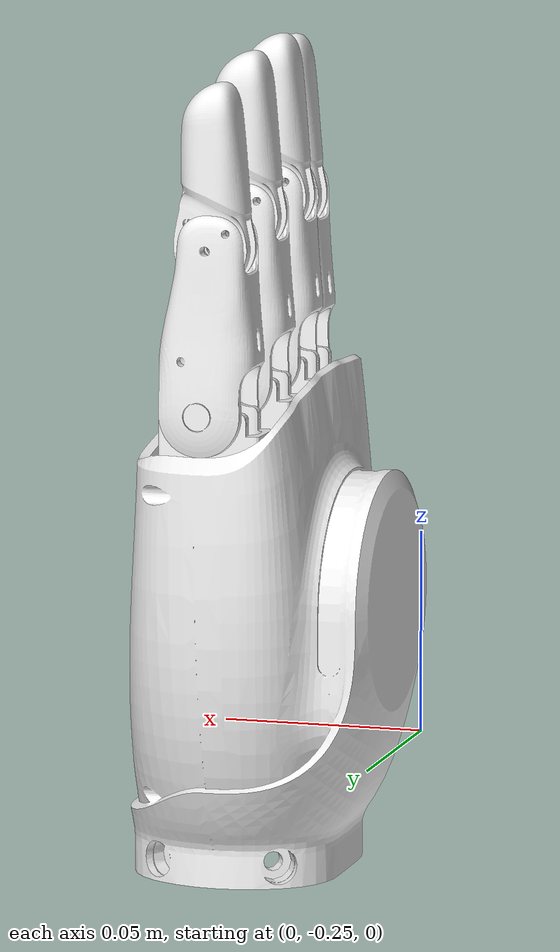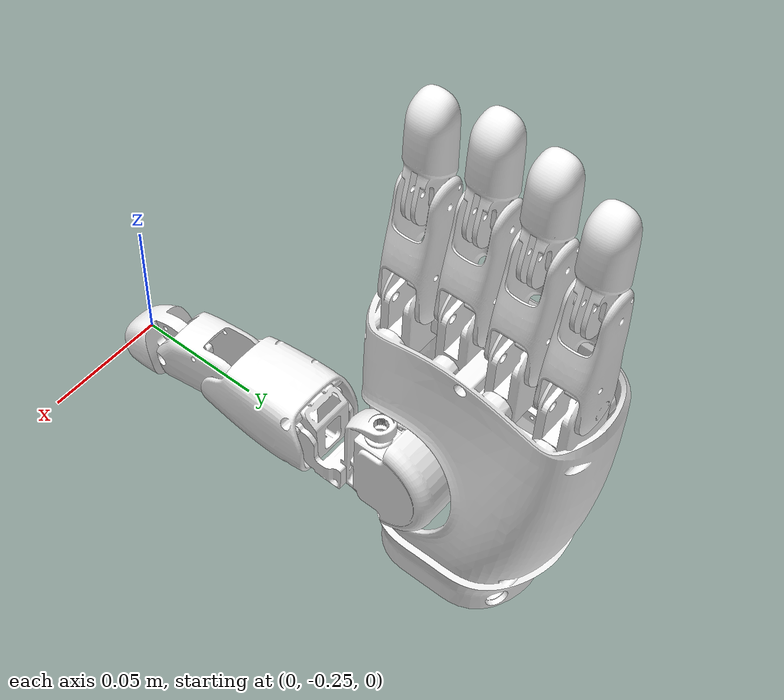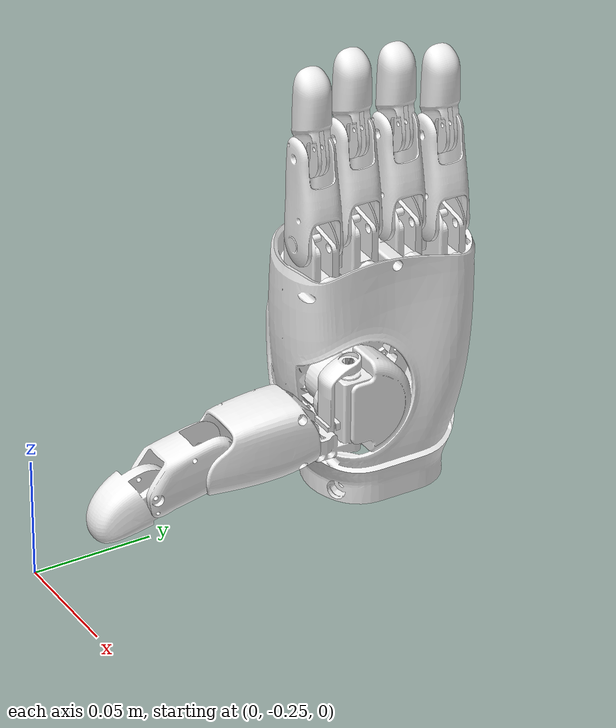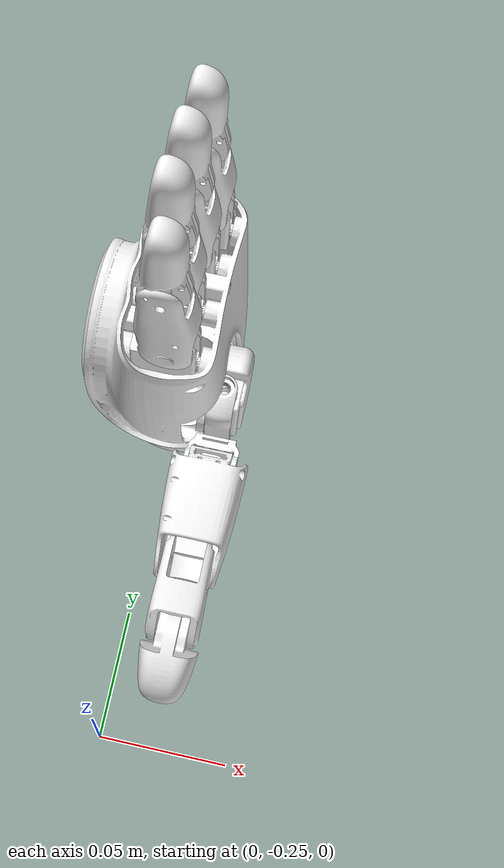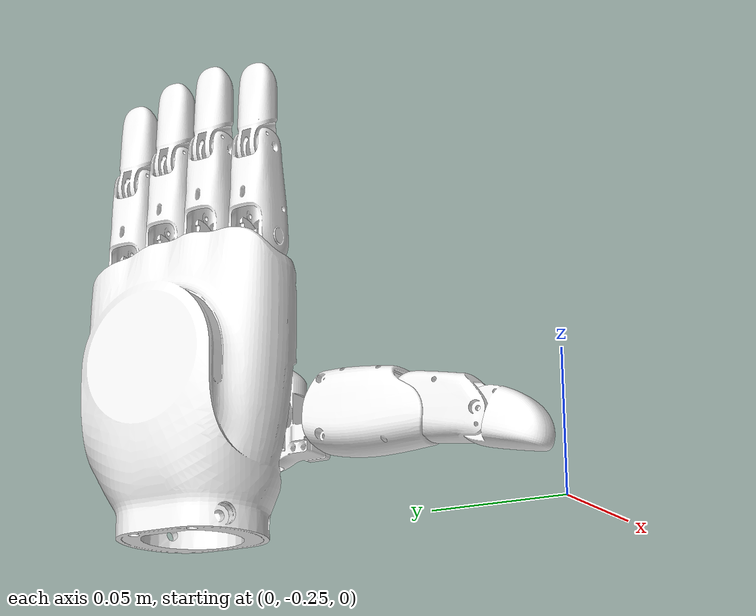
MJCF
<mujoco model="omnihand_left">
  <include file="omnihand_asset.xml" />
  <worldbody>
    <body name="L_palm" pos="0.0 -0.1 0.0">
      <geom class="plastic_visual" mesh="l_palm" />
      <geom class="plastic_collision" mesh="l_palm_col" />
      <geom pos="-0.0031978 -0.0079501 0.096423" class="plastic_visual" mesh="finger_abad" />
      <body name="L_thumb_roll_link" pos="0 -0.018529 0.046851">
        <inertial pos="0.016894 0.0027257 0.0022236" quat="0.416669 0.663999 0.384725 0.487318"
          mass="0.0441" diaginertia="1.95483e-05 1.81152e-05 6.47655e-06" />
        <joint name="L_thumb_roll_joint" pos="0 0 0" axis="1 0 0" range="-1.12137 0.0296706"
          class="hand_joint" />
        <geom class="plastic_visual"
          mesh="l_thumb_roll" />
        <geom class="plastic_collision"
          mesh="l_thumb_roll_col" />
        <body name="L_thumb_abad_link" pos="0.020033 -0.004292 0.00075">
          <inertial pos="0.0091435 -0.0057128 -0.0070941"
            quat="0.395105 -0.20153 -0.304236 0.843041"
            mass="0.0057" diaginertia="2.05091e-06 1.66586e-06 6.63229e-07" />
          <joint name="L_thumb_abad_joint" pos="0 0 0" axis="0 0 1" range="-0.0453786 1.64235"
            class="hand_joint" />
          <geom class="plastic_visual" quat="0.0 0.0 0.0 1" mesh="thumb_abad" />
          <geom class="plastic_collision" quat="0.0 0.0 0.0 1" mesh="thumb_abad_col" />
          <body name="L_thumb_mcp_link" pos="0 -0.0265 -0.0058001">
            <inertial pos="0.0171837 -0.0111898 0.0004267"
              quat="0.188027 0.466895 0.522048 0.688565"
              mass="0.0493" diaginertia="3.45438e-05 3.23399e-05 5.65632e-06" />
            <joint name="L_thumb_mcp_joint" pos="0 0 0" axis="1 0 0" range="-0.841249 0"
              class="hand_joint" />
            <geom class="plastic_visual" quat="0.0 0.0 0.0 1" mesh="thumb_mcp" />
            <geom class="plastic_collision" quat="0.0 0.0 0.0 1" mesh="thumb_mcp_col" />
            <body name="L_thumb_pip_link" pos="0 -0.036229 0.0026606">
              <inertial pos="0.0080816 -0.0049731 -0.0106289"
                quat="0.867774 -0.143101 0.352212 -0.320059" mass="0.02"
                diaginertia="5.56667e-06 5.56667e-06 5.56667e-06" />
              <joint name="L_thumb_pip_joint" pos="0 0 0" axis="1 0 0" range="-1.13446 0"
                class="hand_joint" />
              <geom class="plastic_visual" quat="0.0 0.0 0.0 1" mesh="thumb_pip" />
              <geom class="plastic_collision" quat="0.0 0.0 0.0 1" mesh="thumb_pip_col" />
              <body name="L_thumb_dip_link" pos="0 -0.026054 -0.008672">
                <inertial pos="0.0087102 -0.0052414 -0.0046626"
                  quat="0.186219 0.470432 0.338081 0.793548" mass="0.011"
                  diaginertia="1.87333e-06 1.87333e-06 1.87333e-06" />
                <joint name="L_thumb_dip_joint" pos="0 0 0" axis="1 0 0" range="-1.13446 0"
                  class="hand_joint" />
                <geom class="plastic_visual" quat="0.0 0.0 0.0 1" mesh="thumb_dip" />
                <geom class="plastic_collision" quat="0.0 0.0 0.0 1" mesh="thumb_dip_col" />
                <body name="L_thumb_tip" pos="0 -0.02311 -0.01374">
                  <geom size="0.001" contype="0" conaffinity="0" group="3" />
                </body>
              </body>
            </body>
          </body>
        </body>
      </body>
      <body name="L_index_abad_link" pos="-0.00069782 -0.026958 0.094423">
        <inertial pos="-0.0016333 0.0004633 0.0054014" quat="0.658406 0.0847518 0.0195677 0.74762"
          mass="0.0336" diaginertia="8.7136e-06 7.55542e-06 2.32098e-06" />
        <joint name="L_index_abad_joint" pos="0 0 0" axis="1 0 0" range="0 0.164061"
          class="hand_joint" />
        <geom class="plastic_visual"
          mesh="finger_abad" />
        <body name="L_index_pip_link" pos="0.001025 0 0.017575">
          <inertial pos="-0.0062398 0.0010607 0.0122334" quat="0.454644 0.146422 0.036128 0.877812"
            mass="0.0128" diaginertia="5.80207e-06 5.34037e-06 7.37556e-07" />
          <joint name="L_index_pip_joint" pos="0 0 0" axis="0 1 0" range="0 1.48353"
            class="hand_joint" />
          <geom class="plastic_visual" mesh="finger_pip" />
          <geom class="plastic_collision" mesh="finger_pip_col" />
          <body name="L_index_dip_link" pos="-0.0014266 0 0.036">
            <inertial pos="0.0002897 0.0015071 0.0166735"
              quat="0.799835 0.0274685 -0.0367109 0.598467" mass="0.0047"
              diaginertia="2.1063e-06 2.09e-06 1.63699e-07" />
            <joint name="L_index_dip_joint" pos="0 0 0" axis="0 1 0" range="0 1.75406"
              class="hand_joint" />
            <geom class="plastic_visual" mesh="finger_dip" />
            <geom class="plastic_collision" mesh="finger_dip_col" />
            <body name="L_index_tip" pos="-0.00131 0 0.03841">
              <geom size="0.001" contype="0" conaffinity="0" group="3" />
            </body>
          </body>
        </body>
      </body>
      <body name="L_middle_pip_link" pos="-0.0021728 -0.0079501 0.113998">
        <inertial pos="-0.0062398 0.0010607 0.0122334" quat="0.454644 0.146422 0.036128 0.877812"
          mass="0.0128" diaginertia="5.80207e-06 5.34037e-06 7.37556e-07" />
        <joint name="L_middle_pip_joint" pos="0 0 0" axis="0 1 0" range="0 1.48353"
          class="hand_joint" />
        <geom class="plastic_visual" mesh="finger_pip" />
        <geom class="plastic_collision" mesh="finger_pip_col" />
        <body name="L_middle_dip_link" pos="-0.0014266 0 0.036">
          <inertial pos="0.0002897 0.0015071 0.0166735"
            quat="0.799835 0.0274685 -0.0367109 0.598467"
            mass="0.0047" diaginertia="2.1063e-06 2.09e-06 1.63699e-07" />
          <joint name="L_middle_dip_joint" pos="0 0 0" axis="0 1 0" range="0 1.75406"
            class="hand_joint" />
          <geom class="plastic_visual" mesh="finger_dip" />
          <geom class="plastic_collision" mesh="finger_dip_col" />
          <body name="L_middle_tip" pos="-0.00131 0 0.03841">
            <geom size="0.001" contype="0" conaffinity="0" group="3" />
          </body>
        </body>
      </body>
      <body name="L_ring_abad_link" pos="-0.0021978 0.01105 0.094423">
        <inertial pos="-0.0016333 0.0004633 0.0054014" quat="0.658406 0.0847518 0.0195677 0.74762"
          mass="0.0336" diaginertia="8.7136e-06 7.55542e-06 2.32098e-06" />
        <joint name="L_ring_abad_joint" pos="0 0 0" axis="1 0 0" range="-0.169297 0"
          class="hand_joint" />
        <geom class="plastic_visual"
          mesh="finger_abad" />
        <body name="L_ring_pip_link" pos="0.001025 0 0.017575">
          <inertial pos="-0.0062398 0.0010607 0.0122334" quat="0.454644 0.146422 0.036128 0.877812"
            mass="0.0128" diaginertia="5.80207e-06 5.34037e-06 7.37556e-07" />
          <joint name="L_ring_pip_joint" pos="0 0 0" axis="0 1 0" range="0 1.48353"
            class="hand_joint" />
          <geom class="plastic_visual" mesh="finger_pip" />
          <geom class="plastic_collision" mesh="finger_pip_col" />
          <body name="L_ring_dip_link" pos="-0.0014266 0 0.036">
            <inertial pos="0.0002897 0.0015071 0.0166735"
              quat="0.799835 0.0274685 -0.0367109 0.598467" mass="0.0047"
              diaginertia="2.1063e-06 2.09e-06 1.63699e-07" />
            <joint name="L_ring_dip_joint" pos="0 0 0" axis="0 1 0" range="0 1.75406"
              class="hand_joint" />
            <geom class="plastic_visual" mesh="finger_dip" />
            <geom class="plastic_collision" mesh="finger_dip_col" />
            <body name="L_ring_tip" pos="-0.00131 0 0.03841">
              <geom size="0.001" contype="0" conaffinity="0" group="3" />
            </body>
          </body>
        </body>
      </body>
      <body name="L_pinky_abad_link" pos="-0.00069782 0.03005 0.089423">
        <inertial pos="-0.0016333 0.0004633 0.0054014" quat="0.658406 0.0847518 0.0195677 0.74762"
          mass="0.0336" diaginertia="8.7136e-06 7.55542e-06 2.32098e-06" />
        <joint name="L_pinky_abad_joint" pos="0 0 0" axis="1 0 0" range="-0.185005 0"
          class="hand_joint" />
        <geom class="plastic_visual"
          mesh="finger_abad" />
        <body name="L_pinky_pip_link" pos="0.001025 0 0.017575">
          <inertial pos="-0.0062398 0.0010607 0.0122334" quat="0.454644 0.146422 0.036128 0.877812"
            mass="0.0128" diaginertia="5.80207e-06 5.34037e-06 7.37556e-07" />
          <joint name="L_pinky_pip_joint" pos="0 0 0" axis="0 1 0" range="0 1.48353"
            class="hand_joint" />
          <geom class="plastic_visual" mesh="finger_pip" />
          <geom class="plastic_collision" mesh="finger_pip_col" />
          <body name="L_pinky_dip_link" pos="-0.0014266 0 0.036">
            <inertial pos="0.0002897 0.0015071 0.0166735"
              quat="0.799835 0.0274685 -0.0367109 0.598467" mass="0.0047"
              diaginertia="2.1063e-06 2.09e-06 1.63699e-07" />
            <joint name="L_pinky_dip_joint" pos="0 0 0" axis="0 1 0" range="0 1.75406"
              class="hand_joint" />
            <geom class="plastic_visual" mesh="finger_dip" />
            <geom class="plastic_collision" mesh="finger_dip" />
            <body name="L_pinky_tip" pos="-0.00131 0 0.03841">
              <geom size="0.001" contype="0" conaffinity="0" group="3" />
            </body>
          </body>
        </body>
      </body>
    </body>
  </worldbody>

  <contact>
    <!-- thumb  -->
    <exclude body1="L_palm" body2="L_thumb_roll_link" />
    <exclude body1="L_palm" body2="L_thumb_abad_link" />
    <exclude body1="L_thumb_roll_link" body2="L_thumb_abad_link" />
    <exclude body1="L_thumb_abad_link" body2="L_thumb_mcp_link" />
    <exclude body1="L_thumb_mcp_link" body2="L_thumb_pip_link" />
    <exclude body1="L_thumb_pip_link" body2="L_thumb_dip_link" />

    <!-- index  -->
    <exclude body1="L_palm" body2="L_index_pip_link" />
    <exclude body1="L_index_pip_link" body2="L_index_dip_link" />

    <!-- middle -->
    <exclude body1="L_palm" body2="L_middle_pip_link" />
    <exclude body1="L_middle_pip_link" body2="L_middle_dip_link" />

    <!-- ring -->
    <exclude body1="L_palm" body2="L_ring_pip_link" />
    <exclude body1="L_ring_pip_link" body2="L_ring_dip_link" />

    <!-- pinky -->
    <exclude body1="L_palm" body2="L_pinky_pip_link" />
    <exclude body1="L_pinky_pip_link" body2="L_pinky_dip_link" />
  </contact>

  <actuator>

    <!-- Thumb -->
    <position name="L_thumb_roll_actuator" joint="L_thumb_roll_joint"
      ctrlrange="-1.12137 0.0296706"
      forcerange="-0.418 0.418" kp="5" />

    <position name="L_thumb_abad_actuator" joint="L_thumb_abad_joint" ctrlrange="-0.0453786 1.64235"
      forcerange="-0.314 0.314" kp="5" />

    <position name="L_thumb_mcp_actuator" joint="L_thumb_mcp_joint" ctrlrange="-0.841249 0"
      forcerange="-1.764 1.764" kp="5" />

    <!-- Index -->
    <position name="L_index_abad_actuator" joint="L_index_abad_joint" ctrlrange="0 0.164061"
      forcerange="-1.863 1.863" kp="5" />

    <position name="L_index_pip_actuator" joint="L_index_pip_joint" ctrlrange="0 1.48353"
      forcerange="-1.764 1.764" kp="5" />

    <!-- Middle -->
    <position name="L_middle_pip_actuator" joint="L_middle_pip_joint" ctrlrange="0 1.48353"
      forcerange="-1.764 1.764" kp="5" />

    <!-- Ring -->
    <position name="L_ring_abad_actuator" joint="L_ring_abad_joint" ctrlrange="-0.169297 0"
      forcerange="-2.766 2.766" kp="5" />

    <position name="L_ring_pip_actuator" joint="L_ring_pip_joint" ctrlrange="0 1.48353"
      forcerange="-1.764 1.764" kp="5" />

    <!-- Pinky -->
    <position name="L_pinky_abad_actuator" joint="L_pinky_abad_joint" ctrlrange="-0.185005 0"
      forcerange="-3.393 3.393" kp="5" />

    <position name="L_pinky_pip_actuator" joint="L_pinky_pip_joint" ctrlrange="0 1.48353"
      forcerange="-1.764 1.764" kp="5" />

  </actuator>

  <equality>
    <!-- thumb -->
    <joint name="L_thumb_pip_equality" joint1="L_thumb_pip_joint" joint2="L_thumb_mcp_joint"
      polycoef="0.0 1.33 0.0 0.0 0.0" />
    <joint name="L_thumb_dip_equality" joint1="L_thumb_dip_joint" joint2="L_thumb_mcp_joint"
      polycoef="0.0 1.846 0.853 0.280 0" />
    <!-- index  -->
    <joint name="L_index_dip_equality" joint1="L_index_dip_joint" joint2="L_index_pip_joint"
      polycoef="0.0  2.192  -1.425  0.747 -0.167" />
    <!-- middle -->
    <joint name="L_middle_dip_equality" joint1="L_middle_dip_joint" joint2="L_middle_pip_joint"
      polycoef="0.0  2.192  -1.425  0.747 -0.167" />
    <!-- ring  -->
    <joint name="L_ring_dip_equality" joint1="L_ring_dip_joint" joint2="L_ring_pip_joint"
      polycoef="0.0  2.192  -1.425  0.747 -0.167" />
    <!-- pinky  -->
    <joint name="L_pinky_dip_equality" joint1="L_pinky_dip_joint" joint2="L_pinky_pip_joint"
      polycoef="0.0  2.192  -1.425  0.747 -0.167" />

  </equality>

</mujoco>

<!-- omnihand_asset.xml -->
<mujoco model="omnihand_asset">
    <compiler angle="radian"
        meshdir="../meshes/" />
    <asset>
        <mesh name="l_palm" file="l_palm.STL" />
        <mesh name="l_thumb_roll" file="l_thumb_roll.STL" />
        <mesh name="r_palm" file="r_palm.STL" />
        <mesh name="r_thumb_roll" file="r_thumb_roll.STL" />
        <mesh name="thumb_abad" file="thumb_abad.STL" />
        <mesh name="thumb_mcp" file="thumb_mcp.STL" />
        <mesh name="thumb_pip" file="thumb_pip.STL" />
        <mesh name="thumb_dip" file="thumb_dip.STL" />
        <mesh name="finger_abad" file="finger_abad.STL" />
        <mesh name="finger_pip" file="finger_pip.STL" />
        <mesh name="finger_dip" file="finger_dip.STL" />

        <mesh name="l_palm_col" file="collision/l_palm_col.STL" />
        <mesh name="l_thumb_roll_col" file="collision/l_thumb_roll_col.STL" />
        <mesh name="r_palm_col" file="collision/r_palm_col.STL" />
        <mesh name="r_thumb_roll_col" file="collision/r_thumb_roll_col.STL" />
        <mesh name="thumb_abad_col" file="collision/thumb_abad_col.STL" />
        <mesh name="thumb_mcp_col" file="collision/thumb_mcp_col.STL" />
        <mesh name="thumb_pip_col" file="collision/thumb_pip_col.STL" />
        <mesh name="thumb_dip_col" file="collision/thumb_dip_col.STL" />
        <mesh name="finger_pip_col" file="collision/finger_pip_col.STL" />
        <mesh name="finger_dip_col" file="collision/finger_dip_col.STL" />
        <material name="white" rgba="0.95 0.95 0.95 1.0" />
        <material name="read" rgba="1 0.0 0.0 1.0" />
    </asset>

    <default>
        <default class="hand_joint">
            <joint type="hinge" limited="true" damping="0.05" armature="0.001" margin="0.01"
                frictionloss="0.01" />
        </default>
        <default class="plastic_visual">
            <geom type="mesh" contype="0" conaffinity="0" group="2" material="white" />
        </default>
        <default class="plastic_collision">
            <geom material="read" type="mesh" density="662" friction="1 0.005 0.001" condim="3"
                margin="0.0005" contype="1" conaffinity="1" group="3" />
        </default>
    </default>
</mujoco>
